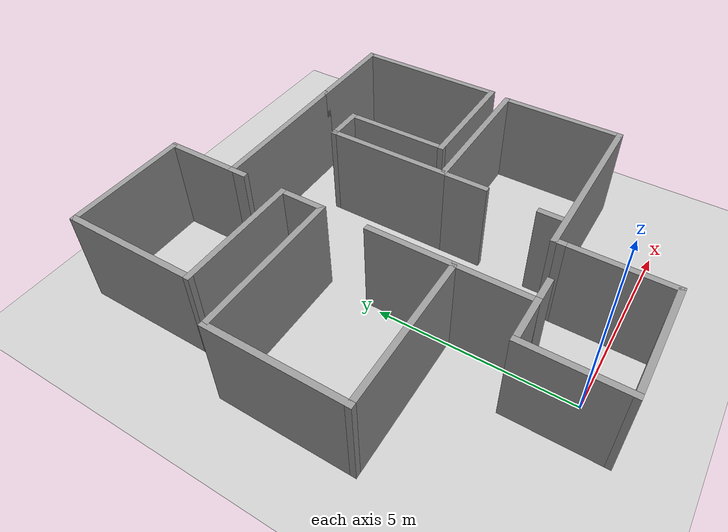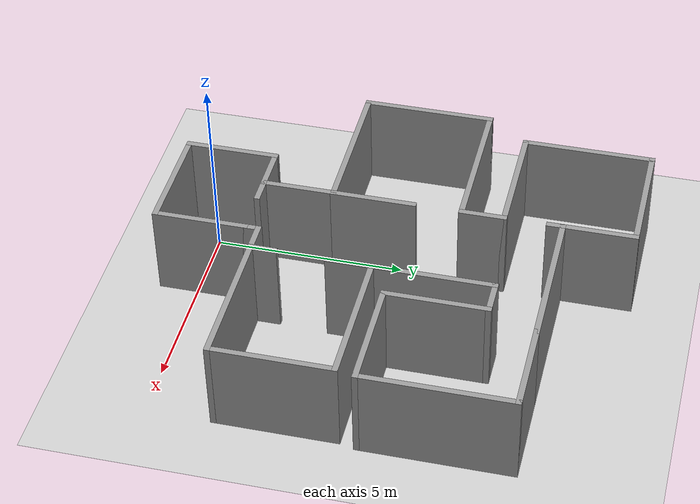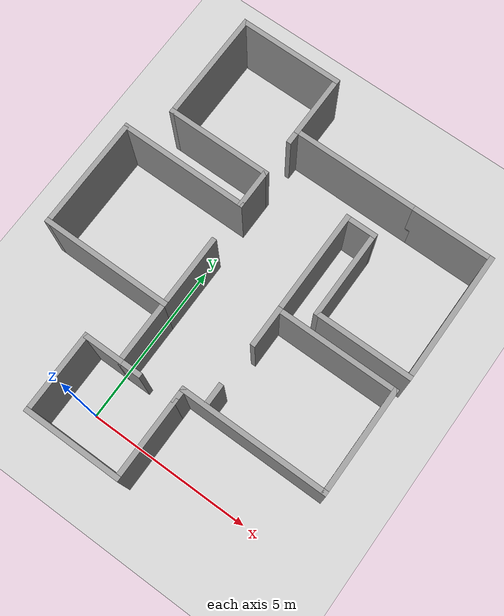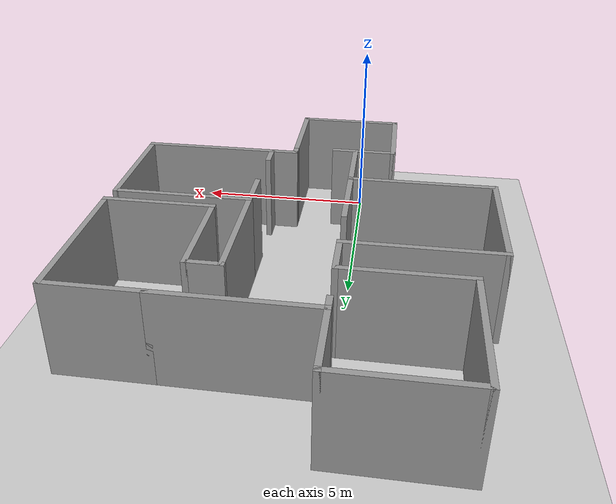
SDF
<sdf version="1.7">
 <world name="default">
  <model name="ground_plane">
   <static>1</static>
   <link name="link">
    <collision name="collision">
     <geometry><plane><normal>0 0 1</normal><size>100 100</size></plane></geometry>
     <surface><friction><ode><mu>100</mu><mu2>50</mu2></ode></friction></surface>
    </collision>
    <visual name="visual">
     <cast_shadows>0</cast_shadows>
     <geometry><plane><normal>0 0 1</normal><size>100 100</size></plane></geometry>
     <material>
      <script><uri>file://media/materials/scripts/gazebo.material</uri><name>Gazebo/Grey</name></script>
     </material>
    </visual>
   </link>
  </model>
  <light name="sun" type="directional">
   <pose>0 0 10 0 -0 0</pose>
   <diffuse>0.8 0.8 0.8 1</diffuse>
   <specular>0.2 0.2 0.2 1</specular>
   <attenuation>
    <range>1000</range>
    <constant>0.9</constant>
    <linear>0.01</linear>
    <quadratic>0.001</quadratic>
   </attenuation>
   <direction>-0.5 0.1 -0.9</direction>
   <spot><inner_angle>0</inner_angle><outer_angle>0</outer_angle><falloff>0</falloff></spot>
  </light>
  <scene><shadows>0</shadows><ambient>0.4 0.4 0.4 1</ambient><background>0.7 0.7 0.7 1</background></scene>
  <physics type="ode">
   <real_time_update_rate>1000</real_time_update_rate>
   <max_step_size>0.001</max_step_size>
   <real_time_factor>1</real_time_factor>
   <ode>
    <solver>
     <type>quick</type>
     <iters>150</iters>
     <precon_iters>0</precon_iters>
     <sor>1.4</sor>
     <use_dynamic_moi_rescaling>1</use_dynamic_moi_rescaling>
    </solver>
    <constraints>
     <cfm>1e-05</cfm>
     <erp>0.2</erp>
     <contact_max_correcting_vel>2000</contact_max_correcting_vel>
     <contact_surface_layer>0.01</contact_surface_layer>
    </constraints>
   </ode>
  </physics>
  <gravity>0 0 -9.8</gravity>
  <magnetic_field>6e-06 2.3e-05 -4.2e-05</magnetic_field>
  <atmosphere type="adiabatic"/>
  <audio><device>default</device></audio>
  <spherical_coordinates>
   <surface_model>EARTH_WGS84</surface_model>
   <latitude_deg>0</latitude_deg>
   <longitude_deg>0</longitude_deg>
   <elevation>0</elevation>
   <heading_deg>0</heading_deg>
  </spherical_coordinates>
  <model name="kucuk_ev">
   <pose>1.32419 5.05265 0 0 -0 0</pose>
   <link name="Wall_0">
    <collision name="Wall_0_Collision">
     <geometry><box><size>3 0.15 2.5</size></box></geometry>
     <pose>0 0 1.25 0 -0 0</pose>
    </collision>
    <visual name="Wall_0_Visual">
     <pose>0 0 1.25 0 -0 0</pose>
     <geometry><box><size>3 0.15 2.5</size></box></geometry>
     <material>
      <script><uri>file://media/materials/scripts/gazebo.material</uri><name>Gazebo/Grey</name></script>
      <ambient>1 1 1 1</ambient>
     </material>
     <meta><layer>0</layer></meta>
    </visual>
    <pose>-0.85 -6 0 0 -0 0</pose>
   </link>
   <link name="Wall_1">
    <collision name="Wall_1_Collision">
     <geometry><box><size>2.5 0.15 2.5</size></box></geometry>
     <pose>0 0 1.25 0 -0 0</pose>
    </collision>
    <visual name="Wall_1_Visual">
     <pose>0 0 1.25 0 -0 0</pose>
     <geometry><box><size>2.5 0.15 2.5</size></box></geometry>
     <material>
      <script><uri>file://media/materials/scripts/gazebo.material</uri><name>Gazebo/Grey</name></script>
      <ambient>1 1 1 1</ambient>
     </material>
     <meta><layer>0</layer></meta>
    </visual>
    <pose>0.575 -4.825 0 0 -0 1.5708</pose>
   </link>
   <link name="Wall_10">
    <collision name="Wall_10_Collision">
     <geometry><box><size>3.5 0.15 2.5</size></box></geometry>
     <pose>0 0 1.25 0 -0 0</pose>
    </collision>
    <visual name="Wall_10_Visual">
     <pose>0 0 1.25 0 -0 0</pose>
     <geometry><box><size>3.5 0.15 2.5</size></box></geometry>
     <material>
      <script><uri>file://media/materials/scripts/gazebo.material</uri><name>Gazebo/Grey</name></script>
      <ambient>1 1 1 1</ambient>
     </material>
     <meta><layer>0</layer></meta>
    </visual>
    <pose>-5.025 -0.125 0 0 -0 1.5708</pose>
   </link>
   <link name="Wall_11">
    <collision name="Wall_11_Collision">
     <geometry><box><size>4 0.15 2.5</size></box></geometry>
     <pose>0 0 1.25 0 -0 0</pose>
    </collision>
    <visual name="Wall_11_Visual">
     <pose>0 0 1.25 0 -0 0</pose>
     <geometry><box><size>4 0.15 2.5</size></box></geometry>
     <material>
      <script><uri>file://media/materials/scripts/gazebo.material</uri><name>Gazebo/Grey</name></script>
      <ambient>1 1 1 1</ambient>
     </material>
     <meta><layer>0</layer></meta>
    </visual>
    <pose>-3.1 1.55 0 0 -0 0</pose>
   </link>
   <link name="Wall_14">
    <collision name="Wall_14_Collision">
     <geometry><box><size>1.25 0.15 2.5</size></box></geometry>
     <pose>0 0 1.25 0 -0 0</pose>
    </collision>
    <visual name="Wall_14_Visual">
     <pose>0 0 1.25 0 -0 0</pose>
     <geometry><box><size>1.25 0.15 2.5</size></box></geometry>
     <material>
      <script><uri>file://media/materials/scripts/gazebo.material</uri><name>Gazebo/Grey</name></script>
      <ambient>1 1 1 1</ambient>
     </material>
     <meta><layer>0</layer></meta>
    </visual>
    <pose>-1.175 2.1 0 0 -0 1.5708</pose>
   </link>
   <link name="Wall_15">
    <collision name="Wall_15_Collision">
     <geometry><box><size>3.25 0.15 2.5</size></box></geometry>
     <pose>0 0 1.25 0 -0 0</pose>
    </collision>
    <visual name="Wall_15_Visual">
     <pose>0 0 1.25 0 -0 0</pose>
     <geometry><box><size>3.25 0.15 2.5</size></box></geometry>
     <material>
      <script><uri>file://media/materials/scripts/gazebo.material</uri><name>Gazebo/Grey</name></script>
      <ambient>1 1 1 1</ambient>
     </material>
     <meta><layer>0</layer></meta>
    </visual>
    <pose>-2.725 2.65 0 0 -0 3.14159</pose>
   </link>
   <link name="Wall_16">
    <collision name="Wall_16_Collision">
     <geometry><box><size>3.5 0.15 2.5</size></box></geometry>
     <pose>0 0 1.25 0 -0 0</pose>
    </collision>
    <visual name="Wall_16_Visual">
     <pose>0 0 1.25 0 -0 0</pose>
     <geometry><box><size>3.5 0.15 2.5</size></box></geometry>
     <material>
      <script><uri>file://media/materials/scripts/gazebo.material</uri><name>Gazebo/Grey</name></script>
      <ambient>1 1 1 1</ambient>
     </material>
     <meta><layer>0</layer></meta>
    </visual>
    <pose>-4.275 4.325 0 0 -0 1.5708</pose>
   </link>
   <link name="Wall_17">
    <collision name="Wall_17_Collision">
     <geometry><box><size>3.25 0.15 2.5</size></box></geometry>
     <pose>0 0 1.25 0 -0 0</pose>
    </collision>
    <visual name="Wall_17_Visual">
     <pose>0 0 1.25 0 -0 0</pose>
     <geometry><box><size>3.25 0.15 2.5</size></box></geometry>
     <material>
      <script><uri>file://media/materials/scripts/gazebo.material</uri><name>Gazebo/Grey</name></script>
      <ambient>1 1 1 1</ambient>
     </material>
     <meta><layer>0</layer></meta>
    </visual>
    <pose>-2.725 6 0 0 -0 0</pose>
   </link>
   <link name="Wall_18">
    <collision name="Wall_18_Collision">
     <geometry><box><size>2 0.15 2.5</size></box></geometry>
     <pose>0 0 1.25 0 -0 0</pose>
    </collision>
    <visual name="Wall_18_Visual">
     <pose>0 0 1.25 0 -0 0</pose>
     <geometry><box><size>2 0.15 2.5</size></box></geometry>
     <material>
      <script><uri>file://media/materials/scripts/gazebo.material</uri><name>Gazebo/Grey</name></script>
      <ambient>1 1 1 1</ambient>
     </material>
     <meta><layer>0</layer></meta>
    </visual>
    <pose>-1.175 5.075 0 0 -0 -1.5708</pose>
   </link>
   <link name="Wall_19">
    <collision name="Wall_19_Collision">
     <geometry><box><size>4 0.15 2.5</size></box></geometry>
     <pose>0 0 1.25 0 -0 0</pose>
    </collision>
    <visual name="Wall_19_Visual">
     <pose>0 0 1.25 0 -0 0</pose>
     <geometry><box><size>4 0.15 2.5</size></box></geometry>
     <material>
      <script><uri>file://media/materials/scripts/gazebo.material</uri><name>Gazebo/Grey</name></script>
      <ambient>1 1 1 1</ambient>
     </material>
     <meta><layer>0</layer></meta>
    </visual>
    <pose>0.75 4.15 0 0 -0 0</pose>
   </link>
   <link name="Wall_20">
    <collision name="Wall_20_Collision">
     <geometry><box><size>2.5 0.15 2.5</size></box></geometry>
     <pose>0 0 1.25 0 -0 0</pose>
    </collision>
    <visual name="Wall_20_Visual">
     <pose>0 0 1.25 0 -0 0</pose>
     <geometry><box><size>2.5 0.15 2.5</size></box></geometry>
     <material>
      <script><uri>file://media/materials/scripts/gazebo.material</uri><name>Gazebo/Grey</name></script>
      <ambient>1 1 1 1</ambient>
     </material>
     <meta><layer>0</layer></meta>
    </visual>
    <pose>3.85 4.15 0 0 -0 0</pose>
   </link>
   <link name="Wall_21">
    <collision name="Wall_21_Collision">
     <geometry><box><size>4 0.15 2.5</size></box></geometry>
     <pose>0 0 1.25 0 -0 0</pose>
    </collision>
    <visual name="Wall_21_Visual">
     <pose>0 0 1.25 0 -0 0</pose>
     <geometry><box><size>4 0.15 2.5</size></box></geometry>
     <material>
      <script><uri>file://media/materials/scripts/gazebo.material</uri><name>Gazebo/Grey</name></script>
      <ambient>1 1 1 1</ambient>
     </material>
     <meta><layer>0</layer></meta>
    </visual>
    <pose>5.025 2.225 0 0 -0 -1.5708</pose>
   </link>
   <link name="Wall_22">
    <collision name="Wall_22_Collision">
     <geometry><box><size>3 0.15 2.5</size></box></geometry>
     <pose>0 0 1.25 0 -0 0</pose>
    </collision>
    <visual name="Wall_22_Visual">
     <pose>0 0 1.25 0 -0 0</pose>
     <geometry><box><size>3 0.15 2.5</size></box></geometry>
     <material>
      <script><uri>file://media/materials/scripts/gazebo.material</uri><name>Gazebo/Grey</name></script>
      <ambient>1 1 1 1</ambient>
     </material>
     <meta><layer>0</layer></meta>
    </visual>
    <pose>3.6 0.3 0 0 -0 3.14159</pose>
   </link>
   <link name="Wall_23">
    <collision name="Wall_23_Collision">
     <geometry><box><size>2.75 0.15 2.5</size></box></geometry>
     <pose>0 0 1.25 0 -0 0</pose>
    </collision>
    <visual name="Wall_23_Visual">
     <pose>0 0 1.25 0 -0 0</pose>
     <geometry><box><size>2.75 0.15 2.5</size></box></geometry>
     <material>
      <script><uri>file://media/materials/scripts/gazebo.material</uri><name>Gazebo/Grey</name></script>
      <ambient>1 1 1 1</ambient>
     </material>
     <meta><layer>0</layer></meta>
    </visual>
    <pose>2.175 1.6 0 0 -0 1.5708</pose>
   </link>
   <link name="Wall_24">
    <collision name="Wall_24_Collision">
     <geometry><box><size>1 0.15 2.5</size></box></geometry>
     <pose>0 0 1.25 0 -0 0</pose>
    </collision>
    <visual name="Wall_24_Visual">
     <pose>0 0 1.25 0 -0 0</pose>
     <geometry><box><size>1 0.15 2.5</size></box></geometry>
     <material>
      <script><uri>file://media/materials/scripts/gazebo.material</uri><name>Gazebo/Grey</name></script>
      <ambient>1 1 1 1</ambient>
     </material>
     <meta><layer>0</layer></meta>
    </visual>
    <pose>1.75 2.9 0 0 -0 3.14159</pose>
   </link>
   <link name="Wall_25">
    <collision name="Wall_25_Collision">
     <geometry><box><size>3.25 0.15 2.5</size></box></geometry>
     <pose>0 0 1.25 0 -0 0</pose>
    </collision>
    <visual name="Wall_25_Visual">
     <pose>0 0 1.25 0 -0 0</pose>
     <geometry><box><size>3.25 0.15 2.5</size></box></geometry>
     <material>
      <script><uri>file://media/materials/scripts/gazebo.material</uri><name>Gazebo/Grey</name></script>
      <ambient>1 1 1 1</ambient>
     </material>
     <meta><layer>0</layer></meta>
    </visual>
    <pose>1.325 1.35 0 0 -0 -1.5708</pose>
   </link>
   <link name="Wall_26">
    <collision name="Wall_26_Collision">
     <geometry><box><size>3.75 0.15 2.5</size></box></geometry>
     <pose>0 0 1.25 0 -0 0</pose>
    </collision>
    <visual name="Wall_26_Visual">
     <pose>0 0 1.25 0 -0 0</pose>
     <geometry><box><size>3.75 0.15 2.5</size></box></geometry>
     <material>
      <script><uri>file://media/materials/scripts/gazebo.material</uri><name>Gazebo/Grey</name></script>
      <ambient>1 1 1 1</ambient>
     </material>
     <meta><layer>0</layer></meta>
    </visual>
    <pose>3.125 -0.2 0 0 -0 0</pose>
   </link>
   <link name="Wall_27">
    <collision name="Wall_27_Collision">
     <geometry><box><size>3.25 0.15 2.5</size></box></geometry>
     <pose>0 0 1.25 0 -0 0</pose>
    </collision>
    <visual name="Wall_27_Visual">
     <pose>0 0 1.25 0 -0 0</pose>
     <geometry><box><size>3.25 0.15 2.5</size></box></geometry>
     <material>
      <script><uri>file://media/materials/scripts/gazebo.material</uri><name>Gazebo/Grey</name></script>
      <ambient>1 1 1 1</ambient>
     </material>
     <meta><layer>0</layer></meta>
    </visual>
    <pose>4.925 -1.75 0 0 -0 -1.5708</pose>
   </link>
   <link name="Wall_28">
    <collision name="Wall_28_Collision">
     <geometry><box><size>4.5 0.15 2.5</size></box></geometry>
     <pose>0 0 1.25 0 -0 0</pose>
    </collision>
    <visual name="Wall_28_Visual">
     <pose>0 0 1.25 0 -0 0</pose>
     <geometry><box><size>4.5 0.15 2.5</size></box></geometry>
     <material>
      <script><uri>file://media/materials/scripts/gazebo.material</uri><name>Gazebo/Grey</name></script>
      <ambient>1 1 1 1</ambient>
     </material>
     <meta><layer>0</layer></meta>
    </visual>
    <pose>2.75 -3.3 0 0 -0 3.14159</pose>
   </link>
   <link name="Wall_29">
    <collision name="Wall_29_Collision">
     <geometry><box><size>0.5 0.15 2.5</size></box></geometry>
     <pose>0 0 1.25 0 -0 0</pose>
    </collision>
    <visual name="Wall_29_Visual">
     <pose>0 0 1.25 0 -0 0</pose>
     <geometry><box><size>0.5 0.15 2.5</size></box></geometry>
     <material>
      <script><uri>file://media/materials/scripts/gazebo.material</uri><name>Gazebo/Grey</name></script>
      <ambient>1 1 1 1</ambient>
     </material>
     <meta><layer>0</layer></meta>
    </visual>
    <pose>0.575 -3.475 0 0 -0 -1.5708</pose>
   </link>
   <link name="Wall_3">
    <collision name="Wall_3_Collision">
     <geometry><box><size>2.5 0.15 2.5</size></box></geometry>
     <pose>0 0 1.25 0 -0 0</pose>
    </collision>
    <visual name="Wall_3_Visual">
     <pose>0 0 1.25 0 -0 0</pose>
     <geometry><box><size>2.5 0.15 2.5</size></box></geometry>
     <material>
      <script><uri>file://media/materials/scripts/gazebo.material</uri><name>Gazebo/Grey</name></script>
      <ambient>1 1 1 1</ambient>
     </material>
     <meta><layer>0</layer></meta>
    </visual>
    <pose>-2.275 -4.825 0 0 -0 1.5708</pose>
   </link>
   <link name="Wall_31">
    <collision name="Wall_31_Collision">
     <geometry><box><size>2.25 0.15 2.5</size></box></geometry>
     <pose>0 0 1.25 0 -0 0</pose>
    </collision>
    <visual name="Wall_31_Visual">
     <pose>0 0 1.25 0 -0 0</pose>
     <geometry><box><size>2.25 0.15 2.5</size></box></geometry>
     <material>
      <script><uri>file://media/materials/scripts/gazebo.material</uri><name>Gazebo/Grey</name></script>
      <ambient>1 1 1 1</ambient>
     </material>
     <meta><layer>0</layer></meta>
    </visual>
    <pose>-1.175 -0.75 0 0 -0 1.5708</pose>
   </link>
   <link name="Wall_33">
    <collision name="Wall_33_Collision">
     <geometry><box><size>0.5 0.15 2.5</size></box></geometry>
     <pose>0 0 1.25 0 -0 0</pose>
    </collision>
    <visual name="Wall_33_Visual">
     <pose>0 0 1.25 0 -0 0</pose>
     <geometry><box><size>0.5 0.15 2.5</size></box></geometry>
     <material>
      <script><uri>file://media/materials/scripts/gazebo.material</uri><name>Gazebo/Grey</name></script>
      <ambient>1 1 1 1</ambient>
     </material>
     <meta><layer>0</layer></meta>
    </visual>
    <pose>-1.175 3.975 0 0 -0 -1.5708</pose>
   </link>
   <link name="Wall_37">
    <collision name="Wall_37_Collision">
     <geometry><box><size>1.25 0.15 2.5</size></box></geometry>
     <pose>0 0 1.25 0 -0 0</pose>
    </collision>
    <visual name="Wall_37_Visual">
     <pose>0 0 1.25 0 -0 0</pose>
     <geometry><box><size>1.25 0.15 2.5</size></box></geometry>
     <material>
      <script><uri>file://media/materials/scripts/gazebo.material</uri><name>Gazebo/Grey</name></script>
      <ambient>1 1 1 1</ambient>
     </material>
     <meta><layer>0</layer></meta>
    </visual>
    <pose>1.325 -0.75 0 0 -0 -1.5708</pose>
   </link>
   <link name="Wall_39">
    <collision name="Wall_39_Collision">
     <geometry><box><size>0.75 0.15 2.5</size></box></geometry>
     <pose>0 0 1.25 0 -0 0</pose>
    </collision>
    <visual name="Wall_39_Visual">
     <pose>0 0 1.25 0 -0 0</pose>
     <geometry><box><size>0.75 0.15 2.5</size></box></geometry>
     <material>
      <script><uri>file://media/materials/scripts/gazebo.material</uri><name>Gazebo/Grey</name></script>
      <ambient>1 1 1 1</ambient>
     </material>
     <meta><layer>0</layer></meta>
    </visual>
    <pose>1.2724 -2.9939 0 0 -0 1.5708</pose>
   </link>
   <link name="Wall_41">
    <collision name="Wall_41_Collision">
     <geometry><box><size>0.75 0.15 2.5</size></box></geometry>
     <pose>0 0 1.25 0 -0 0</pose>
    </collision>
    <visual name="Wall_41_Visual">
     <pose>0 0 1.25 0 -0 0</pose>
     <geometry><box><size>0.75 0.15 2.5</size></box></geometry>
     <material>
      <script><uri>file://media/materials/scripts/gazebo.material</uri><name>Gazebo/Grey</name></script>
      <ambient>1 1 1 1</ambient>
     </material>
     <meta><layer>0</layer></meta>
    </visual>
    <pose>-0.875 -3.65 0 0 -0 0</pose>
   </link>
   <link name="Wall_6">
    <collision name="Wall_6_Collision">
     <geometry><box><size>1.25 0.15 2.5</size></box></geometry>
     <pose>0 0 1.25 0 -0 0</pose>
    </collision>
    <visual name="Wall_6_Visual">
     <pose>0 0 1.25 0 -0 0</pose>
     <geometry><box><size>1.25 0.15 2.5</size></box></geometry>
     <material>
      <script><uri>file://media/materials/scripts/gazebo.material</uri><name>Gazebo/Grey</name></script>
      <ambient>1 1 1 1</ambient>
     </material>
     <meta><layer>0</layer></meta>
    </visual>
    <pose>-1.725 -3.65 0 0 -0 0</pose>
   </link>
   <link name="Wall_7">
    <collision name="Wall_7_Collision">
     <geometry><box><size>2 0.15 2.5</size></box></geometry>
     <pose>0 0 1.25 0 -0 0</pose>
    </collision>
    <visual name="Wall_7_Visual">
     <pose>0 0 1.25 0 -0 0</pose>
     <geometry><box><size>2 0.15 2.5</size></box></geometry>
     <material>
      <script><uri>file://media/materials/scripts/gazebo.material</uri><name>Gazebo/Grey</name></script>
      <ambient>1 1 1 1</ambient>
     </material>
     <meta><layer>0</layer></meta>
    </visual>
    <pose>-1.175 -2.725 0 0 -0 1.5708</pose>
   </link>
   <link name="Wall_8">
    <collision name="Wall_8_Collision">
     <geometry><box><size>4 0.15 2.5</size></box></geometry>
     <pose>0 0 1.25 0 -0 0</pose>
    </collision>
    <visual name="Wall_8_Visual">
     <pose>0 0 1.25 0 -0 0</pose>
     <geometry><box><size>4 0.15 2.5</size></box></geometry>
     <material>
      <script><uri>file://media/materials/scripts/gazebo.material</uri><name>Gazebo/Grey</name></script>
      <ambient>1 1 1 1</ambient>
     </material>
     <meta><layer>0</layer></meta>
    </visual>
    <pose>-3.1 -1.8 0 0 -0 3.14159</pose>
   </link>
   <static>1</static>
  </model>
 </world>
</sdf>
